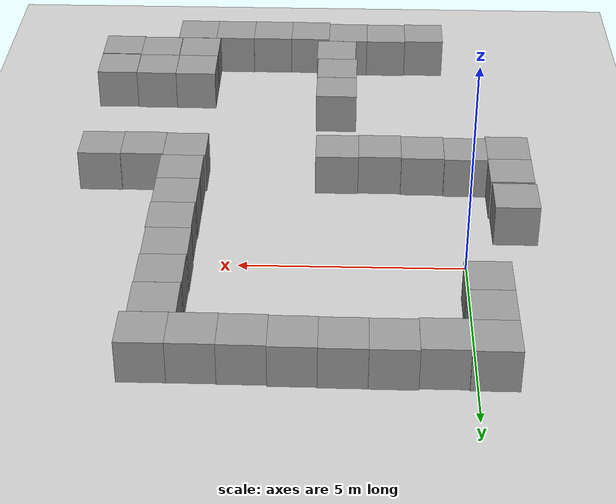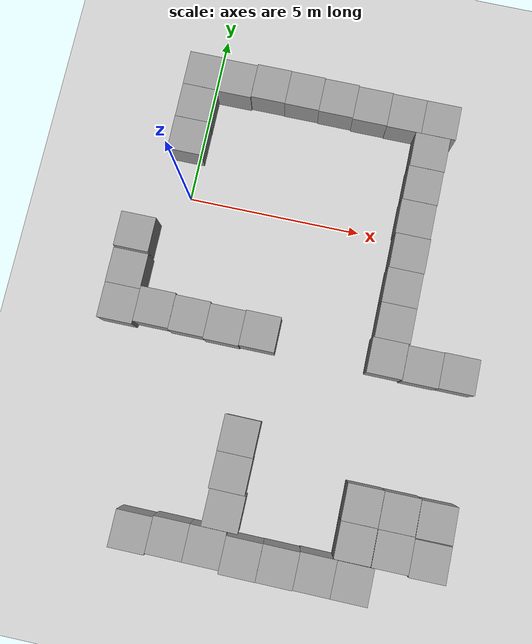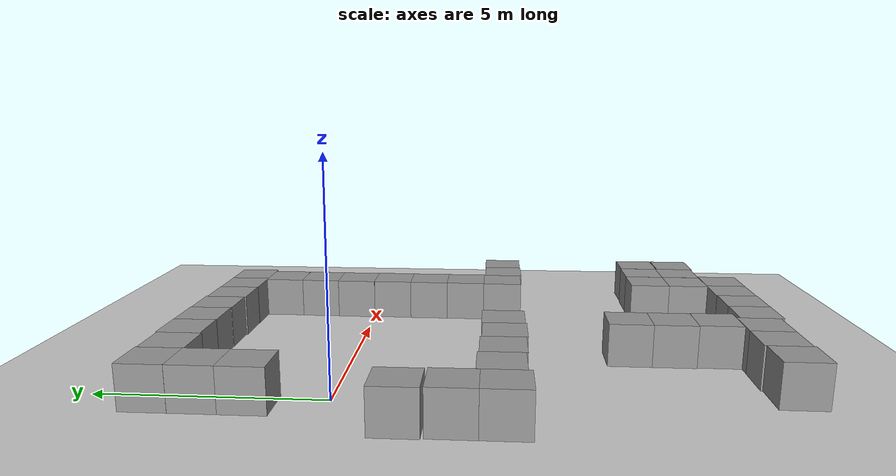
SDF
<sdf version="1.7">
 <world name="default">
  <light name="sun" type="directional">
   <pose>0 0 10 0 -0 0</pose>
   <diffuse>0.8 0.8 0.8 1</diffuse>
   <specular>0.2 0.2 0.2 1</specular>
   <attenuation>
    <range>1000</range>
    <constant>0.9</constant>
    <linear>0.01</linear>
    <quadratic>0.001</quadratic>
   </attenuation>
   <direction>-0.5 0.1 -0.9</direction>
   <spot><inner_angle>0</inner_angle><outer_angle>0</outer_angle><falloff>0</falloff></spot>
  </light>
  <model name="ground_plane">
   <static>1</static>
   <link name="link">
    <collision name="collision">
     <geometry><plane><normal>0 0 1</normal><size>100 100</size></plane></geometry>
     <surface>
      <contact><collide_bitmask>65535</collide_bitmask></contact>
      <friction><ode><mu>100</mu><mu2>50</mu2></ode></friction>
     </surface>
    </collision>
    <visual name="visual">
     <cast_shadows>0</cast_shadows>
     <geometry><plane><normal>0 0 1</normal><size>100 100</size></plane></geometry>
     <material>
      <script><uri>file://media/materials/scripts/gazebo.material</uri><name>Gazebo/Grey</name></script>
     </material>
    </visual>
   </link>
  </model>
  <gravity>0 0 -9.8</gravity>
  <magnetic_field>6e-06 2.3e-05 -4.2e-05</magnetic_field>
  <atmosphere type="adiabatic"/>
  <physics type="ode">
   <max_step_size>0.001</max_step_size>
   <real_time_factor>1</real_time_factor>
   <real_time_update_rate>1000</real_time_update_rate>
  </physics>
  <scene><ambient>0.4 0.4 0.4 1</ambient><background>0.7 0.7 0.7 1</background><shadows>1</shadows></scene>
  <spherical_coordinates>
   <surface_model>EARTH_WGS84</surface_model>
   <latitude_deg>0</latitude_deg>
   <longitude_deg>0</longitude_deg>
   <elevation>0</elevation>
   <heading_deg>0</heading_deg>
  </spherical_coordinates>
  <model name="unit_box">
   <pose>6.49556 1.51822 0.5 0 0 -0.000582</pose>
   <link name="link">
    <inertial>
     <mass>1</mass>
     <inertia>
      <ixx>0.166667</ixx>
      <ixy>0</ixy>
      <ixz>0</ixz>
      <iyy>0.166667</iyy>
      <iyz>0</iyz>
      <izz>0.166667</izz>
     </inertia>
    </inertial>
    <collision name="collision"><geometry><box><size>1 1 1</size></box></geometry></collision>
    <visual name="visual">
     <geometry><box><size>1 1 1</size></box></geometry>
     <material>
      <script><name>Gazebo/Grey</name><uri>file://media/materials/scripts/gazebo.material</uri></script>
     </material>
    </visual>
   </link>
  </model>
  <model name="unit_box_0">
   <pose>6.47803 0.518033 0.5 0 -0 -0.00098</pose>
   <link name="link">
    <inertial>
     <mass>1</mass>
     <inertia>
      <ixx>0.166667</ixx>
      <ixy>0</ixy>
      <ixz>0</ixz>
      <iyy>0.166667</iyy>
      <iyz>0</iyz>
      <izz>0.166667</izz>
     </inertia>
    </inertial>
    <collision name="collision"><geometry><box><size>1 1 1</size></box></geometry></collision>
    <visual name="visual">
     <geometry><box><size>1 1 1</size></box></geometry>
     <material>
      <script><name>Gazebo/Grey</name><uri>file://media/materials/scripts/gazebo.material</uri></script>
     </material>
    </visual>
   </link>
  </model>
  <model name="unit_box_0_clone">
   <pose>6.49174 -0.482234 0.5 -0 -0 -0.001483</pose>
   <link name="link">
    <inertial>
     <mass>1</mass>
     <inertia>
      <ixx>0.166667</ixx>
      <ixy>0</ixy>
      <ixz>0</ixz>
      <iyy>0.166667</iyy>
      <iyz>0</iyz>
      <izz>0.166667</izz>
     </inertia>
    </inertial>
    <collision name="collision"><geometry><box><size>1 1 1</size></box></geometry></collision>
    <visual name="visual">
     <geometry><box><size>1 1 1</size></box></geometry>
     <material>
      <script><name>Gazebo/Grey</name><uri>file://media/materials/scripts/gazebo.material</uri></script>
     </material>
    </visual>
   </link>
  </model>
  <model name="unit_box_0_clone_0">
   <pose>6.47403 -1.48222 0.5 0 0 -0.001502</pose>
   <link name="link">
    <inertial>
     <mass>1</mass>
     <inertia>
      <ixx>0.166667</ixx>
      <ixy>0</ixy>
      <ixz>0</ixz>
      <iyy>0.166667</iyy>
      <iyz>0</iyz>
      <izz>0.166667</izz>
     </inertia>
    </inertial>
    <collision name="collision"><geometry><box><size>1 1 1</size></box></geometry></collision>
    <visual name="visual">
     <geometry><box><size>1 1 1</size></box></geometry>
     <material>
      <script><name>Gazebo/Grey</name><uri>file://media/materials/scripts/gazebo.material</uri></script>
     </material>
    </visual>
   </link>
  </model>
  <model name="unit_box_0_clone_1">
   <pose>6.47258 -2.48223 0.5 -0 -0 -0.001518</pose>
   <link name="link">
    <inertial>
     <mass>1</mass>
     <inertia>
      <ixx>0.166667</ixx>
      <ixy>0</ixy>
      <ixz>0</ixz>
      <iyy>0.166667</iyy>
      <iyz>0</iyz>
      <izz>0.166667</izz>
     </inertia>
    </inertial>
    <collision name="collision"><geometry><box><size>1 1 1</size></box></geometry></collision>
    <visual name="visual">
     <geometry><box><size>1 1 1</size></box></geometry>
     <material>
      <script><name>Gazebo/Grey</name><uri>file://media/materials/scripts/gazebo.material</uri></script>
     </material>
    </visual>
   </link>
  </model>
  <model name="unit_box_0_clone_2">
   <pose>6.43587 -3.48218 0.5 -0 -0 -0.001521</pose>
   <link name="link">
    <inertial>
     <mass>1</mass>
     <inertia>
      <ixx>0.166667</ixx>
      <ixy>0</ixy>
      <ixz>0</ixz>
      <iyy>0.166667</iyy>
      <iyz>0</iyz>
      <izz>0.166667</izz>
     </inertia>
    </inertial>
    <collision name="collision"><geometry><box><size>1 1 1</size></box></geometry></collision>
    <visual name="visual">
     <geometry><box><size>1 1 1</size></box></geometry>
     <material>
      <script><name>Gazebo/Grey</name><uri>file://media/materials/scripts/gazebo.material</uri></script>
     </material>
    </visual>
   </link>
  </model>
  <model name="unit_box_0_clone_3">
   <pose>7.43648 -3.51611 0.499995 1e-05 -0 -0.00061</pose>
   <link name="link">
    <inertial>
     <mass>1</mass>
     <inertia>
      <ixx>0.166667</ixx>
      <ixy>0</ixy>
      <ixz>0</ixz>
      <iyy>0.166667</iyy>
      <iyz>0</iyz>
      <izz>0.166667</izz>
     </inertia>
    </inertial>
    <collision name="collision"><geometry><box><size>1 1 1</size></box></geometry></collision>
    <visual name="visual">
     <geometry><box><size>1 1 1</size></box></geometry>
     <material>
      <script><name>Gazebo/Grey</name><uri>file://media/materials/scripts/gazebo.material</uri></script>
     </material>
    </visual>
   </link>
  </model>
  <model name="unit_box_0_clone_4">
   <pose>8.43654 -3.5029 0.499995 -1e-05 0 -0.000671</pose>
   <link name="link">
    <inertial>
     <mass>1</mass>
     <inertia>
      <ixx>0.166667</ixx>
      <ixy>0</ixy>
      <ixz>0</ixz>
      <iyy>0.166667</iyy>
      <iyz>0</iyz>
      <izz>0.166667</izz>
     </inertia>
    </inertial>
    <collision name="collision"><geometry><box><size>1 1 1</size></box></geometry></collision>
    <visual name="visual">
     <geometry><box><size>1 1 1</size></box></geometry>
     <material>
      <script><name>Gazebo/Grey</name><uri>file://media/materials/scripts/gazebo.material</uri></script>
     </material>
    </visual>
   </link>
  </model>
  <model name="unit_box_0_clone_5">
   <pose>6.53132 -7.45238 0.499995 0 -1e-05 -0.000912</pose>
   <link name="link">
    <inertial>
     <mass>1</mass>
     <inertia>
      <ixx>0.166667</ixx>
      <ixy>0</ixy>
      <ixz>0</ixz>
      <iyy>0.166667</iyy>
      <iyz>0</iyz>
      <izz>0.166667</izz>
     </inertia>
    </inertial>
    <collision name="collision"><geometry><box><size>1 1 1</size></box></geometry></collision>
    <visual name="visual">
     <geometry><box><size>1 1 1</size></box></geometry>
     <material>
      <script><name>Gazebo/Grey</name><uri>file://media/materials/scripts/gazebo.material</uri></script>
     </material>
    </visual>
   </link>
  </model>
  <model name="unit_box_0_clone_6">
   <pose>7.53331 -7.46023 0.5 0 -0 0.000527</pose>
   <link name="link">
    <inertial>
     <mass>1</mass>
     <inertia>
      <ixx>0.166667</ixx>
      <ixy>0</ixy>
      <ixz>0</ixz>
      <iyy>0.166667</iyy>
      <iyz>0</iyz>
      <izz>0.166667</izz>
     </inertia>
    </inertial>
    <collision name="collision"><geometry><box><size>1 1 1</size></box></geometry></collision>
    <visual name="visual">
     <geometry><box><size>1 1 1</size></box></geometry>
     <material>
      <script><name>Gazebo/Grey</name><uri>file://media/materials/scripts/gazebo.material</uri></script>
     </material>
    </visual>
   </link>
  </model>
  <model name="unit_box_0_clone_7">
   <pose>8.53793 -7.47792 0.499995 0 1e-05 0.006789</pose>
   <link name="link">
    <inertial>
     <mass>1</mass>
     <inertia>
      <ixx>0.166667</ixx>
      <ixy>0</ixy>
      <ixz>0</ixz>
      <iyy>0.166667</iyy>
      <iyz>0</iyz>
      <izz>0.166667</izz>
     </inertia>
    </inertial>
    <collision name="collision"><geometry><box><size>1 1 1</size></box></geometry></collision>
    <visual name="visual">
     <geometry><box><size>1 1 1</size></box></geometry>
     <material>
      <script><name>Gazebo/Grey</name><uri>file://media/materials/scripts/gazebo.material</uri></script>
     </material>
    </visual>
   </link>
  </model>
  <model name="unit_box_0_clone_8">
   <pose>2.86974 -3.48614 0.499995 -1e-05 -0 -0.00115</pose>
   <link name="link">
    <inertial>
     <mass>1</mass>
     <inertia>
      <ixx>0.166667</ixx>
      <ixy>0</ixy>
      <ixz>0</ixz>
      <iyy>0.166667</iyy>
      <iyz>0</iyz>
      <izz>0.166667</izz>
     </inertia>
    </inertial>
    <collision name="collision"><geometry><box><size>1 1 1</size></box></geometry></collision>
    <visual name="visual">
     <geometry><box><size>1 1 1</size></box></geometry>
     <material>
      <script><name>Gazebo/Grey</name><uri>file://media/materials/scripts/gazebo.material</uri></script>
     </material>
    </visual>
   </link>
  </model>
  <model name="unit_box_0_clone_9">
   <pose>1.86971 -3.50996 0.499995 -1e-05 0 -0.001151</pose>
   <link name="link">
    <inertial>
     <mass>1</mass>
     <inertia>
      <ixx>0.166667</ixx>
      <ixy>0</ixy>
      <ixz>0</ixz>
      <iyy>0.166667</iyy>
      <iyz>0</iyz>
      <izz>0.166667</izz>
     </inertia>
    </inertial>
    <collision name="collision"><geometry><box><size>1 1 1</size></box></geometry></collision>
    <visual name="visual">
     <geometry><box><size>1 1 1</size></box></geometry>
     <material>
      <script><name>Gazebo/Grey</name><uri>file://media/materials/scripts/gazebo.material</uri></script>
     </material>
    </visual>
   </link>
  </model>
  <model name="unit_box_0_clone_10">
   <pose>0.86961 -3.47147 0.499995 -0 -1e-05 -0.001086</pose>
   <link name="link">
    <inertial>
     <mass>1</mass>
     <inertia>
      <ixx>0.166667</ixx>
      <ixy>0</ixy>
      <ixz>0</ixz>
      <iyy>0.166667</iyy>
      <iyz>0</iyz>
      <izz>0.166667</izz>
     </inertia>
    </inertial>
    <collision name="collision"><geometry><box><size>1 1 1</size></box></geometry></collision>
    <visual name="visual">
     <geometry><box><size>1 1 1</size></box></geometry>
     <material>
      <script><name>Gazebo/Grey</name><uri>file://media/materials/scripts/gazebo.material</uri></script>
     </material>
    </visual>
   </link>
  </model>
  <model name="unit_box_0_clone_11">
   <pose>-0.130662 -3.43572 0.499995 1e-05 -0 -0.000497</pose>
   <link name="link">
    <inertial>
     <mass>1</mass>
     <inertia>
      <ixx>0.166667</ixx>
      <ixy>0</ixy>
      <ixz>0</ixz>
      <iyy>0.166667</iyy>
      <iyz>0</iyz>
      <izz>0.166667</izz>
     </inertia>
    </inertial>
    <collision name="collision"><geometry><box><size>1 1 1</size></box></geometry></collision>
    <visual name="visual">
     <geometry><box><size>1 1 1</size></box></geometry>
     <material>
      <script><name>Gazebo/Grey</name><uri>file://media/materials/scripts/gazebo.material</uri></script>
     </material>
    </visual>
   </link>
  </model>
  <model name="unit_box_0_clone_12">
   <pose>6.53268 -8.45281 0.5 -0 -0 -0.001671</pose>
   <link name="link">
    <inertial>
     <mass>1</mass>
     <inertia>
      <ixx>0.166667</ixx>
      <ixy>0</ixy>
      <ixz>0</ixz>
      <iyy>0.166667</iyy>
      <iyz>0</iyz>
      <izz>0.166667</izz>
     </inertia>
    </inertial>
    <collision name="collision"><geometry><box><size>1 1 1</size></box></geometry></collision>
    <visual name="visual">
     <geometry><box><size>1 1 1</size></box></geometry>
     <material>
      <script><name>Gazebo/Grey</name><uri>file://media/materials/scripts/gazebo.material</uri></script>
     </material>
    </visual>
   </link>
  </model>
  <model name="unit_box_0_clone_13">
   <pose>8.54112 -8.50174 0.499995 -1e-05 -0 -0.0003</pose>
   <link name="link">
    <inertial>
     <mass>1</mass>
     <inertia>
      <ixx>0.166667</ixx>
      <ixy>0</ixy>
      <ixz>0</ixz>
      <iyy>0.166667</iyy>
      <iyz>0</iyz>
      <izz>0.166667</izz>
     </inertia>
    </inertial>
    <collision name="collision"><geometry><box><size>1 1 1</size></box></geometry></collision>
    <visual name="visual">
     <geometry><box><size>1 1 1</size></box></geometry>
     <material>
      <script><name>Gazebo/Grey</name><uri>file://media/materials/scripts/gazebo.material</uri></script>
     </material>
    </visual>
   </link>
  </model>
  <model name="unit_box_0_clone_14">
   <pose>7.54093 -8.46054 0.499995 1e-05 -0 -4.3e-05</pose>
   <link name="link">
    <inertial>
     <mass>1</mass>
     <inertia>
      <ixx>0.166667</ixx>
      <ixy>0</ixy>
      <ixz>0</ixz>
      <iyy>0.166667</iyy>
      <iyz>0</iyz>
      <izz>0.166667</izz>
     </inertia>
    </inertial>
    <collision name="collision"><geometry><box><size>1 1 1</size></box></geometry></collision>
    <visual name="visual">
     <geometry><box><size>1 1 1</size></box></geometry>
     <material>
      <script><name>Gazebo/Grey</name><uri>file://media/materials/scripts/gazebo.material</uri></script>
     </material>
    </visual>
   </link>
  </model>
  <model name="unit_box_0_clone_15">
   <pose>2.91715 -6.3646 0.499995 0 1e-05 -0.009371</pose>
   <link name="link">
    <inertial>
     <mass>1</mass>
     <inertia>
      <ixx>0.166667</ixx>
      <ixy>0</ixy>
      <ixz>0</ixz>
      <iyy>0.166667</iyy>
      <iyz>0</iyz>
      <izz>0.166667</izz>
     </inertia>
    </inertial>
    <collision name="collision"><geometry><box><size>1 1 1</size></box></geometry></collision>
    <visual name="visual">
     <geometry><box><size>1 1 1</size></box></geometry>
     <material>
      <script><name>Gazebo/Grey</name><uri>file://media/materials/scripts/gazebo.material</uri></script>
     </material>
    </visual>
   </link>
  </model>
  <model name="unit_box_0_clone_16">
   <pose>2.91287 -7.36463 0.5 0 0 -0.009387</pose>
   <link name="link">
    <inertial>
     <mass>1</mass>
     <inertia>
      <ixx>0.166667</ixx>
      <ixy>0</ixy>
      <ixz>0</ixz>
      <iyy>0.166667</iyy>
      <iyz>0</iyz>
      <izz>0.166667</izz>
     </inertia>
    </inertial>
    <collision name="collision"><geometry><box><size>1 1 1</size></box></geometry></collision>
    <visual name="visual">
     <geometry><box><size>1 1 1</size></box></geometry>
     <material>
      <script><name>Gazebo/Grey</name><uri>file://media/materials/scripts/gazebo.material</uri></script>
     </material>
    </visual>
   </link>
  </model>
  <model name="unit_box_0_clone_17">
   <pose>2.94062 -8.36516 0.499995 0 -1e-05 -0.009772</pose>
   <link name="link">
    <inertial>
     <mass>1</mass>
     <inertia>
      <ixx>0.166667</ixx>
      <ixy>0</ixy>
      <ixz>0</ixz>
      <iyy>0.166667</iyy>
      <iyz>0</iyz>
      <izz>0.166667</izz>
     </inertia>
    </inertial>
    <collision name="collision"><geometry><box><size>1 1 1</size></box></geometry></collision>
    <visual name="visual">
     <geometry><box><size>1 1 1</size></box></geometry>
     <material>
      <script><name>Gazebo/Grey</name><uri>file://media/materials/scripts/gazebo.material</uri></script>
     </material>
    </visual>
   </link>
  </model>
  <model name="unit_box_0_clone_18">
   <pose>6.64491 -9.45935 0.499995 -1e-05 0 -0.006877</pose>
   <link name="link">
    <inertial>
     <mass>1</mass>
     <inertia>
      <ixx>0.166667</ixx>
      <ixy>0</ixy>
      <ixz>0</ixz>
      <iyy>0.166667</iyy>
      <iyz>0</iyz>
      <izz>0.166667</izz>
     </inertia>
    </inertial>
    <collision name="collision"><geometry><box><size>1 1 1</size></box></geometry></collision>
    <visual name="visual">
     <geometry><box><size>1 1 1</size></box></geometry>
     <material>
      <script><name>Gazebo/Grey</name><uri>file://media/materials/scripts/gazebo.material</uri></script>
     </material>
    </visual>
   </link>
  </model>
  <model name="unit_box_0_clone_19">
   <pose>5.64494 -9.45027 0.499996 7e-06 0 -0.006889</pose>
   <link name="link">
    <inertial>
     <mass>1</mass>
     <inertia>
      <ixx>0.166667</ixx>
      <ixy>0</ixy>
      <ixz>0</ixz>
      <iyy>0.166667</iyy>
      <iyz>0</iyz>
      <izz>0.166667</izz>
     </inertia>
    </inertial>
    <collision name="collision"><geometry><box><size>1 1 1</size></box></geometry></collision>
    <visual name="visual">
     <geometry><box><size>1 1 1</size></box></geometry>
     <material>
      <script><name>Gazebo/Grey</name><uri>file://media/materials/scripts/gazebo.material</uri></script>
     </material>
    </visual>
   </link>
  </model>
  <model name="unit_box_0_clone_20">
   <pose>4.64478 -9.45786 0.499995 0 -1e-05 -0.007034</pose>
   <link name="link">
    <inertial>
     <mass>1</mass>
     <inertia>
      <ixx>0.166667</ixx>
      <ixy>0</ixy>
      <ixz>0</ixz>
      <iyy>0.166667</iyy>
      <iyz>0</iyz>
      <izz>0.166667</izz>
     </inertia>
    </inertial>
    <collision name="collision"><geometry><box><size>1 1 1</size></box></geometry></collision>
    <visual name="visual">
     <geometry><box><size>1 1 1</size></box></geometry>
     <material>
      <script><name>Gazebo/Grey</name><uri>file://media/materials/scripts/gazebo.material</uri></script>
     </material>
    </visual>
   </link>
  </model>
  <model name="unit_box_0_clone_21">
   <pose>3.64441 -9.45659 0.5 0 0 -0.006674</pose>
   <link name="link">
    <inertial>
     <mass>1</mass>
     <inertia>
      <ixx>0.166667</ixx>
      <ixy>0</ixy>
      <ixz>0</ixz>
      <iyy>0.166667</iyy>
      <iyz>0</iyz>
      <izz>0.166667</izz>
     </inertia>
    </inertial>
    <collision name="collision"><geometry><box><size>1 1 1</size></box></geometry></collision>
    <visual name="visual">
     <geometry><box><size>1 1 1</size></box></geometry>
     <material>
      <script><name>Gazebo/Grey</name><uri>file://media/materials/scripts/gazebo.material</uri></script>
     </material>
    </visual>
   </link>
  </model>
  <model name="unit_box_0_clone_22">
   <pose>2.64497 -9.36442 0.5 0 0 -0.006703</pose>
   <link name="link">
    <inertial>
     <mass>1</mass>
     <inertia>
      <ixx>0.166667</ixx>
      <ixy>0</ixy>
      <ixz>0</ixz>
      <iyy>0.166667</iyy>
      <iyz>0</iyz>
      <izz>0.166667</izz>
     </inertia>
    </inertial>
    <collision name="collision"><geometry><box><size>1 1 1</size></box></geometry></collision>
    <visual name="visual">
     <geometry><box><size>1 1 1</size></box></geometry>
     <material>
      <script><name>Gazebo/Grey</name><uri>file://media/materials/scripts/gazebo.material</uri></script>
     </material>
    </visual>
   </link>
  </model>
  <model name="unit_box_0_clone_23">
   <pose>6.51215 2.51878 0.499995 1e-05 -0 0.000537</pose>
   <link name="link">
    <inertial>
     <mass>1</mass>
     <inertia>
      <ixx>0.166667</ixx>
      <ixy>0</ixy>
      <ixz>0</ixz>
      <iyy>0.166667</iyy>
      <iyz>0</iyz>
      <izz>0.166667</izz>
     </inertia>
    </inertial>
    <collision name="collision"><geometry><box><size>1 1 1</size></box></geometry></collision>
    <visual name="visual">
     <geometry><box><size>1 1 1</size></box></geometry>
     <material>
      <script><name>Gazebo/Grey</name><uri>file://media/materials/scripts/gazebo.material</uri></script>
     </material>
    </visual>
   </link>
  </model>
  <model name="unit_box_0_clone_24">
   <pose>6.65953 3.51931 0.499995 0 -1e-05 0.000542</pose>
   <link name="link">
    <inertial>
     <mass>1</mass>
     <inertia>
      <ixx>0.166667</ixx>
      <ixy>0</ixy>
      <ixz>0</ixz>
      <iyy>0.166667</iyy>
      <iyz>0</iyz>
      <izz>0.166667</izz>
     </inertia>
    </inertial>
    <collision name="collision"><geometry><box><size>1 1 1</size></box></geometry></collision>
    <visual name="visual">
     <geometry><box><size>1 1 1</size></box></geometry>
     <material>
      <script><name>Gazebo/Grey</name><uri>file://media/materials/scripts/gazebo.material</uri></script>
     </material>
    </visual>
   </link>
  </model>
  <model name="unit_box_0_clone_25">
   <pose>5.6595 3.51839 0.5 0 -0 0.000562</pose>
   <link name="link">
    <inertial>
     <mass>1</mass>
     <inertia>
      <ixx>0.166667</ixx>
      <ixy>0</ixy>
      <ixz>0</ixz>
      <iyy>0.166667</iyy>
      <iyz>0</iyz>
      <izz>0.166667</izz>
     </inertia>
    </inertial>
    <collision name="collision"><geometry><box><size>1 1 1</size></box></geometry></collision>
    <visual name="visual">
     <geometry><box><size>1 1 1</size></box></geometry>
     <material>
      <script><name>Gazebo/Grey</name><uri>file://media/materials/scripts/gazebo.material</uri></script>
     </material>
    </visual>
   </link>
  </model>
  <model name="unit_box_0_clone_26">
   <pose>4.65945 3.53144 0.5 0 -0 0.000636</pose>
   <link name="link">
    <inertial>
     <mass>1</mass>
     <inertia>
      <ixx>0.166667</ixx>
      <ixy>0</ixy>
      <ixz>0</ixz>
      <iyy>0.166667</iyy>
      <iyz>0</iyz>
      <izz>0.166667</izz>
     </inertia>
    </inertial>
    <collision name="collision"><geometry><box><size>1 1 1</size></box></geometry></collision>
    <visual name="visual">
     <geometry><box><size>1 1 1</size></box></geometry>
     <material>
      <script><name>Gazebo/Grey</name><uri>file://media/materials/scripts/gazebo.material</uri></script>
     </material>
    </visual>
   </link>
  </model>
  <model name="unit_box_0_clone_27">
   <pose>3.65941 3.56334 0.499995 0 -1e-05 0.000657</pose>
   <link name="link">
    <inertial>
     <mass>1</mass>
     <inertia>
      <ixx>0.166667</ixx>
      <ixy>0</ixy>
      <ixz>0</ixz>
      <iyy>0.166667</iyy>
      <iyz>0</iyz>
      <izz>0.166667</izz>
     </inertia>
    </inertial>
    <collision name="collision"><geometry><box><size>1 1 1</size></box></geometry></collision>
    <visual name="visual">
     <geometry><box><size>1 1 1</size></box></geometry>
     <material>
      <script><name>Gazebo/Grey</name><uri>file://media/materials/scripts/gazebo.material</uri></script>
     </material>
    </visual>
   </link>
  </model>
  <model name="unit_box_0_clone_28">
   <pose>2.65932 3.58033 0.499995 0 1e-05 0.000815</pose>
   <link name="link">
    <inertial>
     <mass>1</mass>
     <inertia>
      <ixx>0.166667</ixx>
      <ixy>0</ixy>
      <ixz>0</ixz>
      <iyy>0.166667</iyy>
      <iyz>0</iyz>
      <izz>0.166667</izz>
     </inertia>
    </inertial>
    <collision name="collision"><geometry><box><size>1 1 1</size></box></geometry></collision>
    <visual name="visual">
     <geometry><box><size>1 1 1</size></box></geometry>
     <material>
      <script><name>Gazebo/Grey</name><uri>file://media/materials/scripts/gazebo.material</uri></script>
     </material>
    </visual>
   </link>
  </model>
  <model name="unit_box_0_clone_29">
   <pose>1.65916 3.58895 0.499995 -0 -1e-05 0.001107</pose>
   <link name="link">
    <inertial>
     <mass>1</mass>
     <inertia>
      <ixx>0.166667</ixx>
      <ixy>0</ixy>
      <ixz>0</ixz>
      <iyy>0.166667</iyy>
      <iyz>0</iyz>
      <izz>0.166667</izz>
     </inertia>
    </inertial>
    <collision name="collision"><geometry><box><size>1 1 1</size></box></geometry></collision>
    <visual name="visual">
     <geometry><box><size>1 1 1</size></box></geometry>
     <material>
      <script><name>Gazebo/Grey</name><uri>file://media/materials/scripts/gazebo.material</uri></script>
     </material>
    </visual>
   </link>
  </model>
  <model name="unit_box_0_clone_30">
   <pose>0.65884 3.55092 0.499995 0 1e-05 0.001891</pose>
   <link name="link">
    <inertial>
     <mass>1</mass>
     <inertia>
      <ixx>0.166667</ixx>
      <ixy>0</ixy>
      <ixz>0</ixz>
      <iyy>0.166667</iyy>
      <iyz>0</iyz>
      <izz>0.166667</izz>
     </inertia>
    </inertial>
    <collision name="collision"><geometry><box><size>1 1 1</size></box></geometry></collision>
    <visual name="visual">
     <geometry><box><size>1 1 1</size></box></geometry>
     <material>
      <script><name>Gazebo/Grey</name><uri>file://media/materials/scripts/gazebo.material</uri></script>
     </material>
    </visual>
   </link>
  </model>
  <model name="unit_box_0_clone_31">
   <pose>-0.342486 3.57678 0.499995 1e-05 -0 0.001247</pose>
   <link name="link">
    <inertial>
     <mass>1</mass>
     <inertia>
      <ixx>0.166667</ixx>
      <ixy>0</ixy>
      <ixz>0</ixz>
      <iyy>0.166667</iyy>
      <iyz>0</iyz>
      <izz>0.166667</izz>
     </inertia>
    </inertial>
    <collision name="collision"><geometry><box><size>1 1 1</size></box></geometry></collision>
    <visual name="visual">
     <geometry><box><size>1 1 1</size></box></geometry>
     <material>
      <script><name>Gazebo/Grey</name><uri>file://media/materials/scripts/gazebo.material</uri></script>
     </material>
    </visual>
   </link>
  </model>
  <model name="unit_box_0_clone_32">
   <pose>-0.339847 2.57665 0.499995 0 1e-05 0.001293</pose>
   <link name="link">
    <inertial>
     <mass>1</mass>
     <inertia>
      <ixx>0.166667</ixx>
      <ixy>0</ixy>
      <ixz>0</ixz>
      <iyy>0.166667</iyy>
      <iyz>0</iyz>
      <izz>0.166667</izz>
     </inertia>
    </inertial>
    <collision name="collision"><geometry><box><size>1 1 1</size></box></geometry></collision>
    <visual name="visual">
     <geometry><box><size>1 1 1</size></box></geometry>
     <material>
      <script><name>Gazebo/Grey</name><uri>file://media/materials/scripts/gazebo.material</uri></script>
     </material>
    </visual>
   </link>
  </model>
  <model name="unit_box_0_clone_33">
   <pose>-0.342028 1.57642 0.499995 1e-05 -0 0.001165</pose>
   <link name="link">
    <inertial>
     <mass>1</mass>
     <inertia>
      <ixx>0.166667</ixx>
      <ixy>0</ixy>
      <ixz>0</ixz>
      <iyy>0.166667</iyy>
      <iyz>0</iyz>
      <izz>0.166667</izz>
     </inertia>
    </inertial>
    <collision name="collision"><geometry><box><size>1 1 1</size></box></geometry></collision>
    <visual name="visual">
     <geometry><box><size>1 1 1</size></box></geometry>
     <material>
      <script><name>Gazebo/Grey</name><uri>file://media/materials/scripts/gazebo.material</uri></script>
     </material>
    </visual>
   </link>
  </model>
  <model name="unit_box_0_clone_34">
   <pose>-1.13074 -3.52491 0.499995 1e-05 0 -0.000483</pose>
   <link name="link">
    <inertial>
     <mass>1</mass>
     <inertia>
      <ixx>0.166667</ixx>
      <ixy>0</ixy>
      <ixz>0</ixz>
      <iyy>0.166667</iyy>
      <iyz>0</iyz>
      <izz>0.166667</izz>
     </inertia>
    </inertial>
    <collision name="collision"><geometry><box><size>1 1 1</size></box></geometry></collision>
    <visual name="visual">
     <geometry><box><size>1 1 1</size></box></geometry>
     <material>
      <script><name>Gazebo/Grey</name><uri>file://media/materials/scripts/gazebo.material</uri></script>
     </material>
    </visual>
   </link>
  </model>
  <model name="unit_box_0_clone_35">
   <pose>-1.13227 -2.52488 0.5 -0 -0 -0.000437</pose>
   <link name="link">
    <inertial>
     <mass>1</mass>
     <inertia>
      <ixx>0.166667</ixx>
      <ixy>0</ixy>
      <ixz>0</ixz>
      <iyy>0.166667</iyy>
      <iyz>0</iyz>
      <izz>0.166667</izz>
     </inertia>
    </inertial>
    <collision name="collision"><geometry><box><size>1 1 1</size></box></geometry></collision>
    <visual name="visual">
     <geometry><box><size>1 1 1</size></box></geometry>
     <material>
      <script><name>Gazebo/Grey</name><uri>file://media/materials/scripts/gazebo.material</uri></script>
     </material>
    </visual>
   </link>
  </model>
  <model name="unit_box_0_clone_36">
   <pose>-1.1637 -1.47075 0.499995 0 1e-05 -0.000171</pose>
   <link name="link">
    <inertial>
     <mass>1</mass>
     <inertia>
      <ixx>0.166667</ixx>
      <ixy>0</ixy>
      <ixz>0</ixz>
      <iyy>0.166667</iyy>
      <iyz>0</iyz>
      <izz>0.166667</izz>
     </inertia>
    </inertial>
    <collision name="collision"><geometry><box><size>1 1 1</size></box></geometry></collision>
    <visual name="visual">
     <geometry><box><size>1 1 1</size></box></geometry>
     <material>
      <script><name>Gazebo/Grey</name><uri>file://media/materials/scripts/gazebo.material</uri></script>
     </material>
    </visual>
   </link>
  </model>
  <model name="unit_box_0_clone_37">
   <pose>1.64498 -9.35533 0.5 0 -0 -0.006695</pose>
   <link name="link">
    <inertial>
     <mass>1</mass>
     <inertia>
      <ixx>0.166667</ixx>
      <ixy>0</ixy>
      <ixz>0</ixz>
      <iyy>0.166667</iyy>
      <iyz>0</iyz>
      <izz>0.166667</izz>
     </inertia>
    </inertial>
    <collision name="collision"><geometry><box><size>1 1 1</size></box></geometry></collision>
    <visual name="visual">
     <geometry><box><size>1 1 1</size></box></geometry>
     <material>
      <script><name>Gazebo/Grey</name><uri>file://media/materials/scripts/gazebo.material</uri></script>
     </material>
    </visual>
   </link>
  </model>
  <model name="unit_box_0_clone_38">
   <pose>0.644621 -9.3927 0.5 -0 -0 -0.006649</pose>
   <link name="link">
    <inertial>
     <mass>1</mass>
     <inertia>
      <ixx>0.166667</ixx>
      <ixy>0</ixy>
      <ixz>0</ixz>
      <iyy>0.166667</iyy>
      <iyz>0</iyz>
      <izz>0.166667</izz>
     </inertia>
    </inertial>
    <collision name="collision"><geometry><box><size>1 1 1</size></box></geometry></collision>
    <visual name="visual">
     <geometry><box><size>1 1 1</size></box></geometry>
     <material>
      <script><name>Gazebo/Grey</name><uri>file://media/materials/scripts/gazebo.material</uri></script>
     </material>
    </visual>
   </link>
  </model>
 </world>
</sdf>
